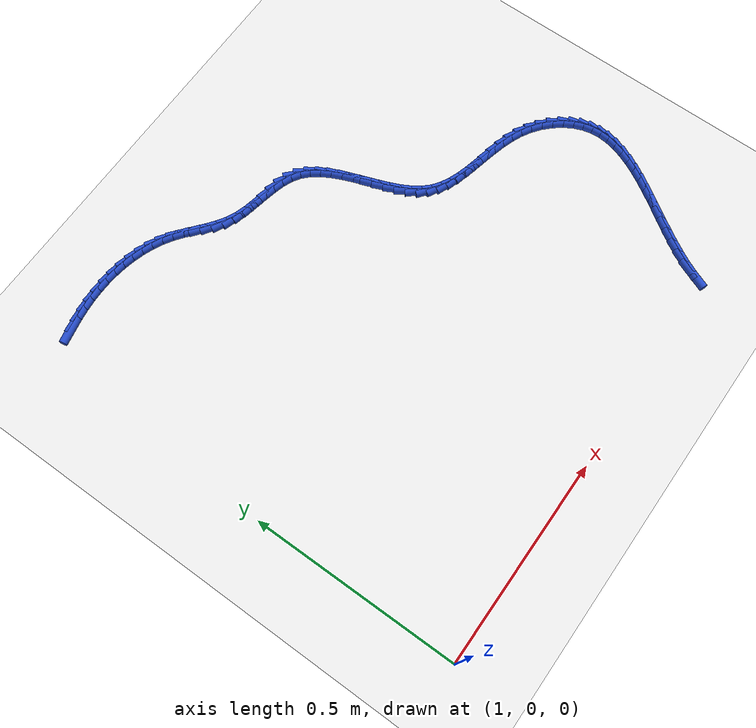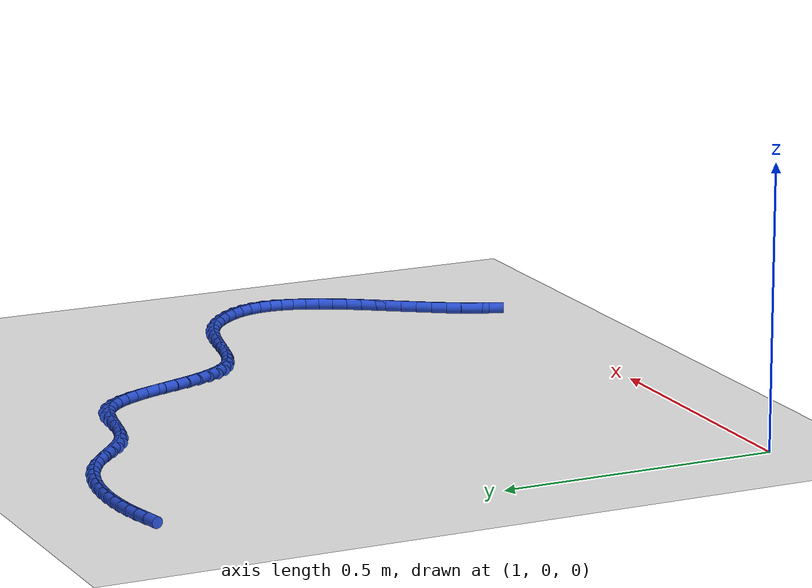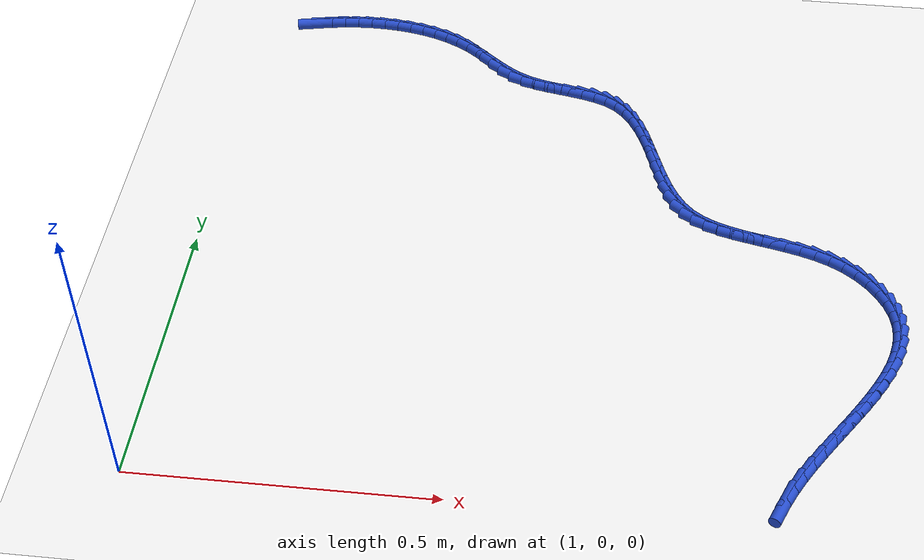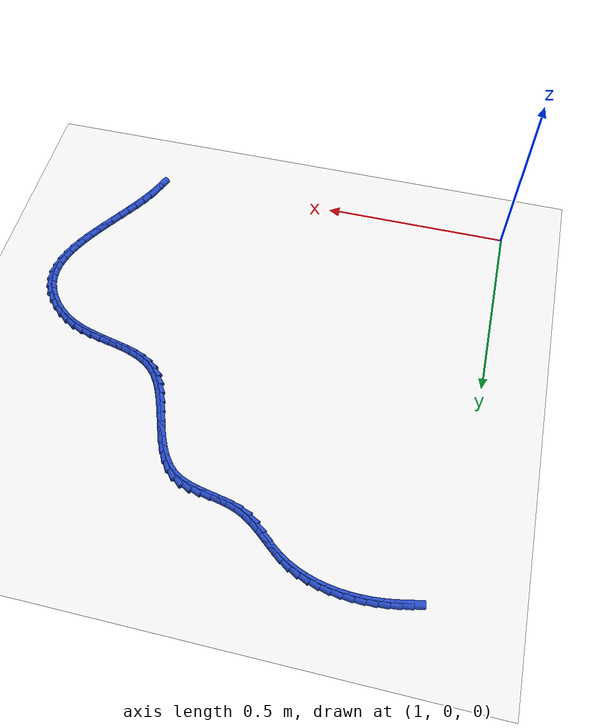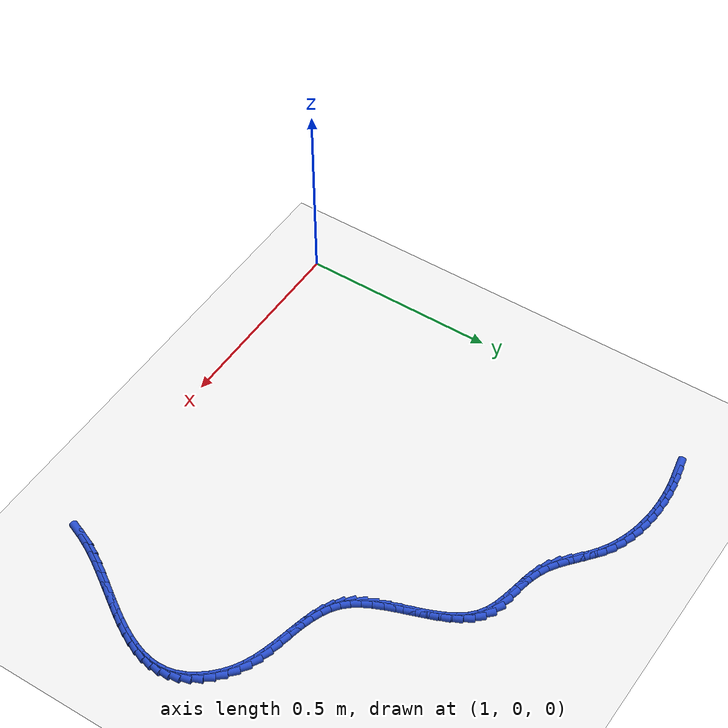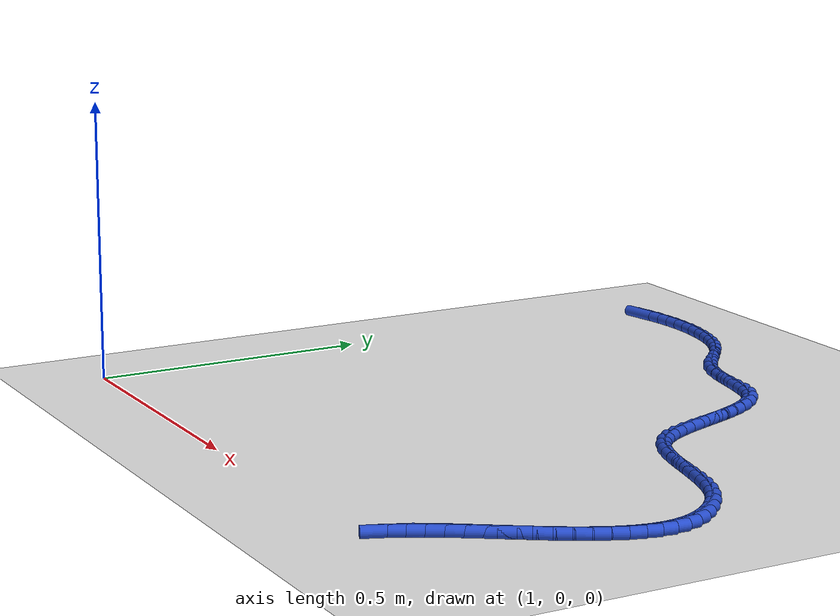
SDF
<sdf version="1.6">
 <world name="default">
  <model name="ground_plane">
   <static>1</static>
   <link name="link">
    <collision name="collision">
     <geometry><plane><normal>0 0 1</normal><size>100 100</size></plane></geometry>
     <surface><friction><ode><mu>100</mu><mu2>50</mu2></ode></friction></surface>
    </collision>
    <visual name="visual">
     <cast_shadows>0</cast_shadows>
     <geometry><plane><normal>0 0 1</normal><size>100 100</size></plane></geometry>
     <material>
      <script><uri>file://media/materials/scripts/gazebo.material</uri><name>Gazebo/WhiteGlow</name></script>
     </material>
    </visual>
   </link>
  </model>
  <model name="line">
   <link name="link_71">
    <pose>1.0995099693033457 1.0949292208144241 0.01 0 1.57 0.19654742426345875</pose>
    <collision name="collision">
     <geometry><cylinder><radius>0.01</radius><length>0.08</length></cylinder></geometry>
    </collision>
    <visual name="visual">
     <material>
      <script><name>Gazebo/Blue</name><uri>file://media/materials/scripts/gazebo.material</uri></script>
     </material>
     <geometry><cylinder><radius>0.01</radius><length>0.08</length></cylinder></geometry>
    </visual>
   </link>
   <link name="link_72">
    <pose>1.1248017144392806 1.0999652647575537 0.01 0 1.57 0.14840533250866253</pose>
    <collision name="collision">
     <geometry><cylinder><radius>0.01</radius><length>0.08</length></cylinder></geometry>
    </collision>
    <visual name="visual">
     <material>
      <script><name>Gazebo/Blue</name><uri>file://media/materials/scripts/gazebo.material</uri></script>
     </material>
     <geometry><cylinder><radius>0.01</radius><length>0.08</length></cylinder></geometry>
    </visual>
   </link>
   <link name="link_73">
    <pose>1.1505126242585688 1.103809161912704 0.01 0 1.57 0.09424960472446355</pose>
    <collision name="collision">
     <geometry><cylinder><radius>0.01</radius><length>0.08</length></cylinder></geometry>
    </collision>
    <visual name="visual">
     <material>
      <script><name>Gazebo/Blue</name><uri>file://media/materials/scripts/gazebo.material</uri></script>
     </material>
     <geometry><cylinder><radius>0.01</radius><length>0.08</length></cylinder></geometry>
    </visual>
   </link>
   <link name="link_74">
    <pose>1.17664352514968 1.106279307418807 0.01 0 1.57 0.038077685356058516</pose>
    <collision name="collision">
     <geometry><cylinder><radius>0.01</radius><length>0.08</length></cylinder></geometry>
    </collision>
    <visual name="visual">
     <material>
      <script><name>Gazebo/Blue</name><uri>file://media/materials/scripts/gazebo.material</uri></script>
     </material>
     <geometry><cylinder><radius>0.01</radius><length>0.08</length></cylinder></geometry>
    </visual>
   </link>
   <link name="link_75">
    <pose>1.203034714039521 1.1072847087663655 0.01 0 1.57 -0.020252873606114746</pose>
    <collision name="collision">
     <geometry><cylinder><radius>0.01</radius><length>0.08</length></cylinder></geometry>
    </collision>
    <visual name="visual">
     <material>
      <script><name>Gazebo/Blue</name><uri>file://media/materials/scripts/gazebo.material</uri></script>
     </material>
     <geometry><cylinder><radius>0.01</radius><length>0.08</length></cylinder></geometry>
    </visual>
   </link>
   <link name="link_76">
    <pose>1.2295012631021565 1.1067486117928518 0.01 0 1.57 -0.08155603382480009</pose>
    <collision name="collision">
     <geometry><cylinder><radius>0.01</radius><length>0.08</length></cylinder></geometry>
    </collision>
    <visual name="visual">
     <material>
      <script><name>Gazebo/Blue</name><uri>file://media/materials/scripts/gazebo.material</uri></script>
     </material>
     <geometry><cylinder><radius>0.01</radius><length>0.08</length></cylinder></geometry>
    </visual>
   </link>
   <link name="link_77">
    <pose>1.2558582445116502 1.1045942623357383 0.01 0 1.57 -0.1466370596937748</pose>
    <collision name="collision">
     <geometry><cylinder><radius>0.01</radius><length>0.08</length></cylinder></geometry>
    </collision>
    <visual name="visual">
     <material>
      <script><name>Gazebo/Blue</name><uri>file://media/materials/scripts/gazebo.material</uri></script>
     </material>
     <geometry><cylinder><radius>0.01</radius><length>0.08</length></cylinder></geometry>
    </visual>
   </link>
   <link name="link_78">
    <pose>1.281920730442067 1.1007449062324979 0.01 0 1.57 -0.21628345399351867</pose>
    <collision name="collision">
     <geometry><cylinder><radius>0.01</radius><length>0.08</length></cylinder></geometry>
    </collision>
    <visual name="visual">
     <material>
      <script><name>Gazebo/Blue</name><uri>file://media/materials/scripts/gazebo.material</uri></script>
     </material>
     <geometry><cylinder><radius>0.01</radius><length>0.08</length></cylinder></geometry>
    </visual>
   </link>
   <link name="link_79">
    <pose>1.3075037930674704 1.0951237893206034 0.01 0 1.57 -0.29123655688492545</pose>
    <collision name="collision">
     <geometry><cylinder><radius>0.01</radius><length>0.08</length></cylinder></geometry>
    </collision>
    <visual name="visual">
     <material>
      <script><name>Gazebo/Blue</name><uri>file://media/materials/scripts/gazebo.material</uri></script>
     </material>
     <geometry><cylinder><radius>0.01</radius><length>0.08</length></cylinder></geometry>
    </visual>
   </link>
   <link name="link_80">
    <pose>1.3324225045619245 1.0876541574375265 0.01 0 1.57 -0.3721381277812001</pose>
    <collision name="collision">
     <geometry><cylinder><radius>0.01</radius><length>0.08</length></cylinder></geometry>
    </collision>
    <visual name="visual">
     <material>
      <script><name>Gazebo/Blue</name><uri>file://media/materials/scripts/gazebo.material</uri></script>
     </material>
     <geometry><cylinder><radius>0.01</radius><length>0.08</length></cylinder></geometry>
    </visual>
   </link>
   <link name="link_81">
    <pose>1.356491937099494 1.0782592564207403 0.01 0 1.57 -0.45944738746989666</pose>
    <collision name="collision">
     <geometry><cylinder><radius>0.01</radius><length>0.08</length></cylinder></geometry>
    </collision>
    <visual name="visual">
     <material>
      <script><name>Gazebo/Blue</name><uri>file://media/materials/scripts/gazebo.material</uri></script>
     </material>
     <geometry><cylinder><radius>0.01</radius><length>0.08</length></cylinder></geometry>
    </visual>
   </link>
   <link name="link_82">
    <pose>1.3795271628542434 1.0668623321077173 0.01 0 1.57 -0.5533222559878519</pose>
    <collision name="collision">
     <geometry><cylinder><radius>0.01</radius><length>0.08</length></cylinder></geometry>
    </collision>
    <visual name="visual">
     <material>
      <script><name>Gazebo/Blue</name><uri>file://media/materials/scripts/gazebo.material</uri></script>
     </material>
     <geometry><cylinder><radius>0.01</radius><length>0.08</length></cylinder></geometry>
    </visual>
   </link>
   <link name="link_83">
    <pose>1.4013433644520894 1.0533867775443297 0.01 0 1.57 -0.6422244705023927</pose>
    <collision name="collision">
     <geometry><cylinder><radius>0.01</radius><length>0.08</length></cylinder></geometry>
    </collision>
    <visual name="visual">
     <material>
      <script><name>Gazebo/Blue</name><uri>file://media/materials/scripts/gazebo.material</uri></script>
     </material>
     <geometry><cylinder><radius>0.01</radius><length>0.08</length></cylinder></geometry>
    </visual>
   </link>
   <link name="link_84">
    <pose>1.4219297931130037 1.037987981513518 0.01 0 1.57 -0.6918975041664919</pose>
    <collision name="collision">
     <geometry><cylinder><radius>0.01</radius><length>0.08</length></cylinder></geometry>
    </collision>
    <visual name="visual">
     <material>
      <script><name>Gazebo/Blue</name><uri>file://media/materials/scripts/gazebo.material</uri></script>
     </material>
     <geometry><cylinder><radius>0.01</radius><length>0.08</length></cylinder></geometry>
    </visual>
   </link>
   <link name="link_85">
    <pose>1.4418022138906106 1.0215230617090554 0.01 0 1.57 -0.6966446735592975</pose>
    <collision name="collision">
     <geometry><cylinder><radius>0.01</radius><length>0.08</length></cylinder></geometry>
    </collision>
    <visual name="visual">
     <material>
      <script><name>Gazebo/Blue</name><uri>file://media/materials/scripts/gazebo.material</uri></script>
     </material>
     <geometry><cylinder><radius>0.01</radius><length>0.08</length></cylinder></geometry>
    </visual>
   </link>
   <link name="link_86">
    <pose>1.461575556558113 1.004981300919371 0.01 0 1.57 -0.6563841195219137</pose>
    <collision name="collision">
     <geometry><cylinder><radius>0.01</radius><length>0.08</length></cylinder></geometry>
    </collision>
    <visual name="visual">
     <material>
      <script><name>Gazebo/Blue</name><uri>file://media/materials/scripts/gazebo.material</uri></script>
     </material>
     <geometry><cylinder><radius>0.01</radius><length>0.08</length></cylinder></geometry>
    </visual>
   </link>
   <link name="link_87">
    <pose>1.4818647508887144 0.9893519819328948 0.01 0 1.57 -0.5699359193053338</pose>
    <collision name="collision">
     <geometry><cylinder><radius>0.01</radius><length>0.08</length></cylinder></geometry>
    </collision>
    <visual name="visual">
     <material>
      <script><name>Gazebo/Blue</name><uri>file://media/materials/scripts/gazebo.material</uri></script>
     </material>
     <geometry><cylinder><radius>0.01</radius><length>0.08</length></cylinder></geometry>
    </visual>
   </link>
   <link name="link_88">
    <pose>1.5032847266556173 0.9756243875380564 0.01 0 1.57 -0.43886230095871676</pose>
    <collision name="collision">
     <geometry><cylinder><radius>0.01</radius><length>0.08</length></cylinder></geometry>
    </collision>
    <visual name="visual">
     <material>
      <script><name>Gazebo/Blue</name><uri>file://media/materials/scripts/gazebo.material</uri></script>
     </material>
     <geometry><cylinder><radius>0.01</radius><length>0.08</length></cylinder></geometry>
    </visual>
   </link>
   <link name="link_89">
    <pose>1.5264317113988803 0.964759391535034 0.01 0 1.57 -0.3091356025774658</pose>
    <collision name="collision">
     <geometry><cylinder><radius>0.01</radius><length>0.08</length></cylinder></geometry>
    </collision>
    <visual name="visual">
     <material>
      <script><name>Gazebo/Blue</name><uri>file://media/materials/scripts/gazebo.material</uri></script>
     </material>
     <geometry><cylinder><radius>0.01</radius><length>0.08</length></cylinder></geometry>
    </visual>
   </link>
   <link name="link_90">
    <pose>1.551307380065799 0.956814732922264 0.01 0 1.57 -0.2289063560500351</pose>
    <collision name="collision">
     <geometry><cylinder><radius>0.01</radius><length>0.08</length></cylinder></geometry>
    </collision>
    <visual name="visual">
     <material>
      <script><name>Gazebo/Blue</name><uri>file://media/materials/scripts/gazebo.material</uri></script>
     </material>
     <geometry><cylinder><radius>0.01</radius><length>0.08</length></cylinder></geometry>
    </visual>
   </link>
   <link name="link_91">
    <pose>1.5772100094942783 0.9507796778333768 0.01 0 1.57 -0.19594532564467074</pose>
    <collision name="collision">
     <geometry><cylinder><radius>0.01</radius><length>0.08</length></cylinder></geometry>
    </collision>
    <visual name="visual">
     <material>
      <script><name>Gazebo/Blue</name><uri>file://media/materials/scripts/gazebo.material</uri></script>
     </material>
     <geometry><cylinder><radius>0.01</radius><length>0.08</length></cylinder></geometry>
    </visual>
   </link>
   <link name="link_92">
    <pose>1.6033972121387512 0.9455817225596845 0.01 0 1.57 -0.20811564662053977</pose>
    <collision name="collision">
     <geometry><cylinder><radius>0.01</radius><length>0.08</length></cylinder></geometry>
    </collision>
    <visual name="visual">
     <material>
      <script><name>Gazebo/Blue</name><uri>file://media/materials/scripts/gazebo.material</uri></script>
     </material>
     <geometry><cylinder><radius>0.01</radius><length>0.08</length></cylinder></geometry>
    </visual>
   </link>
   <link name="link_93">
    <pose>1.6291266004536509 0.9401483633924997 0.01 0 1.57 -0.2682047624006664</pose>
    <collision name="collision">
     <geometry><cylinder><radius>0.01</radius><length>0.08</length></cylinder></geometry>
    </collision>
    <visual name="visual">
     <material>
      <script><name>Gazebo/Blue</name><uri>file://media/materials/scripts/gazebo.material</uri></script>
     </material>
     <geometry><cylinder><radius>0.01</radius><length>0.08</length></cylinder></geometry>
    </visual>
   </link>
   <link name="link_94">
    <pose>1.6536557868934116 0.9334070966231349 0.01 0 1.57 -0.38382400864713856</pose>
    <collision name="collision">
     <geometry><cylinder><radius>0.01</radius><length>0.08</length></cylinder></geometry>
    </collision>
    <visual name="visual">
     <material>
      <script><name>Gazebo/Blue</name><uri>file://media/materials/scripts/gazebo.material</uri></script>
     </material>
     <geometry><cylinder><radius>0.01</radius><length>0.08</length></cylinder></geometry>
    </visual>
   </link>
   <link name="link_95">
    <pose>1.6762423839124663 0.9242854185429018 0.01 0 1.57 -0.5626176626146184</pose>
    <collision name="collision">
     <geometry><cylinder><radius>0.01</radius><length>0.08</length></cylinder></geometry>
    </collision>
    <visual name="visual">
     <material>
      <script><name>Gazebo/Blue</name><uri>file://media/materials/scripts/gazebo.material</uri></script>
     </material>
     <geometry><cylinder><radius>0.01</radius><length>0.08</length></cylinder></geometry>
    </visual>
   </link>
   <link name="link_96">
    <pose>1.6961561607879325 0.9117277487504792 0.01 0 1.57 -0.7657255255749237</pose>
    <collision name="collision">
     <geometry><cylinder><radius>0.01</radius><length>0.08</length></cylinder></geometry>
    </collision>
    <visual name="visual">
     <material>
      <script><name>Gazebo/Blue</name><uri>file://media/materials/scripts/gazebo.material</uri></script>
     </material>
     <geometry><cylinder><radius>0.01</radius><length>0.08</length></cylinder></geometry>
    </visual>
   </link>
   <link name="link_97">
    <pose>1.713166434873072 0.8953739192772314 0.01 0 1.57 -0.9321260165804418</pose>
    <collision name="collision">
     <geometry><cylinder><radius>0.01</radius><length>0.08</length></cylinder></geometry>
    </collision>
    <visual name="visual">
     <material>
      <script><name>Gazebo/Blue</name><uri>file://media/materials/scripts/gazebo.material</uri></script>
     </material>
     <geometry><cylinder><radius>0.01</radius><length>0.08</length></cylinder></geometry>
    </visual>
   </link>
   <link name="link_98">
    <pose>1.7277074913812374 0.8757894526722686 0.01 0 1.57 -1.0559136024923677</pose>
    <collision name="collision">
     <geometry><cylinder><radius>0.01</radius><length>0.08</length></cylinder></geometry>
    </collision>
    <visual name="visual">
     <material>
      <script><name>Gazebo/Blue</name><uri>file://media/materials/scripts/gazebo.material</uri></script>
     </material>
     <geometry><cylinder><radius>0.01</radius><length>0.08</length></cylinder></geometry>
    </visual>
   </link>
   <link name="link_99">
    <pose>1.7402597071503243 0.8536040348561161 0.01 0 1.57 -1.1419944429110098</pose>
    <collision name="collision">
     <geometry><cylinder><radius>0.01</radius><length>0.08</length></cylinder></geometry>
    </collision>
    <visual name="visual">
     <material>
      <script><name>Gazebo/Blue</name><uri>file://media/materials/scripts/gazebo.material</uri></script>
     </material>
     <geometry><cylinder><radius>0.01</radius><length>0.08</length></cylinder></geometry>
    </visual>
   </link>
   <link name="link_100">
    <pose>1.7513034590182297 0.8294473517492998 0.01 0 1.57 -1.1965140049305312</pose>
    <collision name="collision">
     <geometry><cylinder><radius>0.01</radius><length>0.08</length></cylinder></geometry>
    </collision>
    <visual name="visual">
     <material>
      <script><name>Gazebo/Blue</name><uri>file://media/materials/scripts/gazebo.material</uri></script>
     </material>
     <geometry><cylinder><radius>0.01</radius><length>0.08</length></cylinder></geometry>
    </visual>
   </link>
   <link name="link_101">
    <pose>1.7613191238228474 0.8039490892723461 0.01 0 1.57 -1.2241502688944048</pose>
    <collision name="collision">
     <geometry><cylinder><radius>0.01</radius><length>0.08</length></cylinder></geometry>
    </collision>
    <visual name="visual">
     <material>
      <script><name>Gazebo/Blue</name><uri>file://media/materials/scripts/gazebo.material</uri></script>
     </material>
     <geometry><cylinder><radius>0.01</radius><length>0.08</length></cylinder></geometry>
    </visual>
   </link>
   <link name="link_102">
    <pose>1.7707870784020738 0.77773893334578 0.01 0 1.57 -1.2274185421283461</pose>
    <collision name="collision">
     <geometry><cylinder><radius>0.01</radius><length>0.08</length></cylinder></geometry>
    </collision>
    <visual name="visual">
     <material>
      <script><name>Gazebo/Blue</name><uri>file://media/materials/scripts/gazebo.material</uri></script>
     </material>
     <geometry><cylinder><radius>0.01</radius><length>0.08</length></cylinder></geometry>
    </visual>
   </link>
   <link name="link_103">
    <pose>1.7801876995938046 0.7514465698901277 0.01 0 1.57 -1.2066108345893714</pose>
    <collision name="collision">
     <geometry><cylinder><radius>0.01</radius><length>0.08</length></cylinder></geometry>
    </collision>
    <visual name="visual">
     <material>
      <script><name>Gazebo/Blue</name><uri>file://media/materials/scripts/gazebo.material</uri></script>
     </material>
     <geometry><cylinder><radius>0.01</radius><length>0.08</length></cylinder></geometry>
    </visual>
   </link>
   <link name="link_104">
    <pose>1.7900013642359363 0.7257016848259148 0.01 0 1.57 -1.1597975073725004</pose>
    <collision name="collision">
     <geometry><cylinder><radius>0.01</radius><length>0.08</length></cylinder></geometry>
    </collision>
    <visual name="visual">
     <material>
      <script><name>Gazebo/Blue</name><uri>file://media/materials/scripts/gazebo.material</uri></script>
     </material>
     <geometry><cylinder><radius>0.01</radius><length>0.08</length></cylinder></geometry>
    </visual>
   </link>
   <link name="link_105">
    <pose>1.8007084491663625 0.7011339640736673 0.01 0 1.57 -1.0828335490556837</pose>
    <collision name="collision">
     <geometry><cylinder><radius>0.01</radius><length>0.08</length></cylinder></geometry>
    </collision>
    <visual name="visual">
     <material>
      <script><name>Gazebo/Blue</name><uri>file://media/materials/scripts/gazebo.material</uri></script>
     </material>
     <geometry><cylinder><radius>0.01</radius><length>0.08</length></cylinder></geometry>
    </visual>
   </link>
   <link name="link_106">
    <pose>1.8127893312229806 0.678373093553911 0.01 0 1.57 -0.9697771376599267</pose>
    <collision name="collision">
     <geometry><cylinder><radius>0.01</radius><length>0.08</length></cylinder></geometry>
    </collision>
    <visual name="visual">
     <material>
      <script><name>Gazebo/Blue</name><uri>file://media/materials/scripts/gazebo.material</uri></script>
     </material>
     <geometry><cylinder><radius>0.01</radius><length>0.08</length></cylinder></geometry>
    </visual>
   </link>
   <link name="link_107">
    <pose>1.8267243872436856 0.6580487591871713 0.01 0 1.57 -0.8149482966514473</pose>
    <collision name="collision">
     <geometry><cylinder><radius>0.01</radius><length>0.08</length></cylinder></geometry>
    </collision>
    <visual name="visual">
     <material>
      <script><name>Gazebo/Blue</name><uri>file://media/materials/scripts/gazebo.material</uri></script>
     </material>
     <geometry><cylinder><radius>0.01</radius><length>0.08</length></cylinder></geometry>
    </visual>
   </link>
   <link name="link_108">
    <pose>1.8429929403964256 0.640789156066973 0.01 0 1.57 -0.6361846033794647</pose>
    <collision name="collision">
     <geometry><cylinder><radius>0.01</radius><length>0.08</length></cylinder></geometry>
    </collision>
    <visual name="visual">
     <material>
      <script><name>Gazebo/Blue</name><uri>file://media/materials/scripts/gazebo.material</uri></script>
     </material>
     <geometry><cylinder><radius>0.01</radius><length>0.08</length></cylinder></geometry>
    </visual>
   </link>
   <link name="link_109">
    <pose>1.8618294120607155 0.6268759702119604 0.01 0 1.57 -0.4836684615697884</pose>
    <collision name="collision">
     <geometry><cylinder><radius>0.01</radius><length>0.08</length></cylinder></geometry>
    </collision>
    <visual name="visual">
     <material>
      <script><name>Gazebo/Blue</name><uri>file://media/materials/scripts/gazebo.material</uri></script>
     </material>
     <geometry><cylinder><radius>0.01</radius><length>0.08</length></cylinder></geometry>
    </visual>
   </link>
   <link name="link_110">
    <pose>1.8829108467909934 0.6158022607824247 0.01 0 1.57 -0.3684089717560502</pose>
    <collision name="collision">
     <geometry><cylinder><radius>0.01</radius><length>0.08</length></cylinder></geometry>
    </collision>
    <visual name="visual">
     <material>
      <script><name>Gazebo/Blue</name><uri>file://media/materials/scripts/gazebo.material</uri></script>
     </material>
     <geometry><cylinder><radius>0.01</radius><length>0.08</length></cylinder></geometry>
    </visual>
   </link>
   <link name="link_111">
    <pose>1.905837142655045 0.6069519331513716 0.01 0 1.57 -0.2888846126701612</pose>
    <collision name="collision">
     <geometry><cylinder><radius>0.01</radius><length>0.08</length></cylinder></geometry>
    </collision>
    <visual name="visual">
     <material>
      <script><name>Gazebo/Blue</name><uri>file://media/materials/scripts/gazebo.material</uri></script>
     </material>
     <geometry><cylinder><radius>0.01</radius><length>0.08</length></cylinder></geometry>
    </visual>
   </link>
   <link name="link_112">
    <pose>1.9302081977206567 0.5997088926918075 0.01 0 1.57 -0.24119494564917582</pose>
    <collision name="collision">
     <geometry><cylinder><radius>0.01</radius><length>0.08</length></cylinder></geometry>
    </collision>
    <visual name="visual">
     <material>
      <script><name>Gazebo/Blue</name><uri>file://media/materials/scripts/gazebo.material</uri></script>
     </material>
     <geometry><cylinder><radius>0.01</radius><length>0.08</length></cylinder></geometry>
    </visual>
   </link>
   <link name="link_113">
    <pose>1.9556239100556152 0.5934570447767382 0.01 0 1.57 -0.22179612783247568</pose>
    <collision name="collision">
     <geometry><cylinder><radius>0.01</radius><length>0.08</length></cylinder></geometry>
    </collision>
    <visual name="visual">
     <material>
      <script><name>Gazebo/Blue</name><uri>file://media/materials/scripts/gazebo.material</uri></script>
     </material>
     <geometry><cylinder><radius>0.01</radius><length>0.08</length></cylinder></geometry>
    </visual>
   </link>
   <link name="link_114">
    <pose>1.9816841777277039 0.5875802947791701 0.01 0 1.57 -0.22850997309535395</pose>
    <collision name="collision">
     <geometry><cylinder><radius>0.01</radius><length>0.08</length></cylinder></geometry>
    </collision>
    <visual name="visual">
     <material>
      <script><name>Gazebo/Blue</name><uri>file://media/materials/scripts/gazebo.material</uri></script>
     </material>
     <geometry><cylinder><radius>0.01</radius><length>0.08</length></cylinder></geometry>
    </visual>
   </link>
   <link name="link_115">
    <pose>2.0079888988047108 0.5814625480721094 0.01 0 1.57 -0.2606649440859552</pose>
    <collision name="collision">
     <geometry><cylinder><radius>0.01</radius><length>0.08</length></cylinder></geometry>
    </collision>
    <visual name="visual">
     <material>
      <script><name>Gazebo/Blue</name><uri>file://media/materials/scripts/gazebo.material</uri></script>
     </material>
     <geometry><cylinder><radius>0.01</radius><length>0.08</length></cylinder></geometry>
    </visual>
   </link>
   <link name="link_116">
    <pose>2.0341379713544208 0.5744877100285622 0.01 0 1.57 -0.318826053212033</pose>
    <collision name="collision">
     <geometry><cylinder><radius>0.01</radius><length>0.08</length></cylinder></geometry>
    </collision>
    <visual name="visual">
     <material>
      <script><name>Gazebo/Blue</name><uri>file://media/materials/scripts/gazebo.material</uri></script>
     </material>
     <geometry><cylinder><radius>0.01</radius><length>0.08</length></cylinder></geometry>
    </visual>
   </link>
   <link name="link_117">
    <pose>2.0597312934446204 0.5660396860215346 0.01 0 1.57 -0.40415050255614055</pose>
    <collision name="collision">
     <geometry><cylinder><radius>0.01</radius><length>0.08</length></cylinder></geometry>
    </collision>
    <visual name="visual">
     <material>
      <script><name>Gazebo/Blue</name><uri>file://media/materials/scripts/gazebo.material</uri></script>
     </material>
     <geometry><cylinder><radius>0.01</radius><length>0.08</length></cylinder></geometry>
    </visual>
   </link>
   <link name="link_118">
    <pose>2.084368763143095 0.5555023814240331 0.01 0 1.57 -0.5170837987024319</pose>
    <collision name="collision">
     <geometry><cylinder><radius>0.01</radius><length>0.08</length></cylinder></geometry>
    </collision>
    <visual name="visual">
     <material>
      <script><name>Gazebo/Blue</name><uri>file://media/materials/scripts/gazebo.material</uri></script>
     </material>
     <geometry><cylinder><radius>0.01</radius><length>0.08</length></cylinder></geometry>
    </visual>
   </link>
   <link name="link_119">
    <pose>2.1076500183870803 0.542262423224577 0.01 0 1.57 -0.6454136617655961</pose>
    <collision name="collision">
     <geometry><cylinder><radius>0.01</radius><length>0.08</length></cylinder></geometry>
    </collision>
    <visual name="visual">
     <material>
      <script><name>Gazebo/Blue</name><uri>file://media/materials/scripts/gazebo.material</uri></script>
     </material>
     <geometry><cylinder><radius>0.01</radius><length>0.08</length></cylinder></geometry>
    </visual>
   </link>
   <link name="link_120">
    <pose>2.1291388497992108 0.5260814908910075 0.01 0 1.57 -0.769992955414057</pose>
    <collision name="collision">
     <geometry><cylinder><radius>0.01</radius><length>0.08</length></cylinder></geometry>
    </collision>
    <visual name="visual">
     <material>
      <script><name>Gazebo/Blue</name><uri>file://media/materials/scripts/gazebo.material</uri></script>
     </material>
     <geometry><cylinder><radius>0.01</radius><length>0.08</length></cylinder></geometry>
    </visual>
   </link>
   <link name="link_121">
    <pose>2.148326942522658 0.5074756673700014 0.01 0 1.57 -0.8951298032857178</pose>
    <collision name="collision">
     <geometry><cylinder><radius>0.01</radius><length>0.08</length></cylinder></geometry>
    </collision>
    <visual name="visual">
     <material>
      <script><name>Gazebo/Blue</name><uri>file://media/materials/scripts/gazebo.material</uri></script>
     </material>
     <geometry><cylinder><radius>0.01</radius><length>0.08</length></cylinder></geometry>
    </visual>
   </link>
   <link name="link_122">
    <pose>2.164697339607435 0.4870514534959546 0.01 0 1.57 -1.0285408829522338</pose>
    <collision name="collision">
     <geometry><cylinder><radius>0.01</radius><length>0.08</length></cylinder></geometry>
    </collision>
    <visual name="visual">
     <material>
      <script><name>Gazebo/Blue</name><uri>file://media/materials/scripts/gazebo.material</uri></script>
     </material>
     <geometry><cylinder><radius>0.01</radius><length>0.08</length></cylinder></geometry>
    </visual>
   </link>
   <link name="link_123">
    <pose>2.1777330841035525 0.46541535010326307 0.01 0 1.57 -1.1790752065566508</pose>
    <collision name="collision">
     <geometry><cylinder><radius>0.01</radius><length>0.08</length></cylinder></geometry>
    </collision>
    <visual name="visual">
     <material>
      <script><name>Gazebo/Blue</name><uri>file://media/materials/scripts/gazebo.material</uri></script>
     </material>
     <geometry><cylinder><radius>0.01</radius><length>0.08</length></cylinder></geometry>
    </visual>
   </link>
   <link name="link_124">
    <pose>2.1869215709691687 0.44317087510952013 0.01 0 1.57 -1.3458653230555422</pose>
    <collision name="collision">
     <geometry><cylinder><radius>0.01</radius><length>0.08</length></cylinder></geometry>
    </collision>
    <visual name="visual">
     <material>
      <script><name>Gazebo/Blue</name><uri>file://media/materials/scripts/gazebo.material</uri></script>
     </material>
     <geometry><cylinder><radius>0.01</radius><length>0.08</length></cylinder></geometry>
    </visual>
   </link>
   <link name="link_125">
    <pose>2.192061025610208 0.4207084947469979 0.01 0 1.57 -1.5089781134866314</pose>
    <collision name="collision">
     <geometry><cylinder><radius>0.01</radius><length>0.08</length></cylinder></geometry>
    </collision>
    <visual name="visual">
     <material>
      <script><name>Gazebo/Blue</name><uri>file://media/materials/scripts/gazebo.material</uri></script>
     </material>
     <geometry><cylinder><radius>0.01</radius><length>0.08</length></cylinder></geometry>
    </visual>
   </link>
   <link name="link_126">
    <pose>2.193462455617834 0.3980672003215083 0.01 0 1.57 1.4843272326921444</pose>
    <collision name="collision">
     <geometry><cylinder><radius>0.01</radius><length>0.08</length></cylinder></geometry>
    </collision>
    <visual name="visual">
     <material>
      <script><name>Gazebo/Blue</name><uri>file://media/materials/scripts/gazebo.material</uri></script>
     </material>
     <geometry><cylinder><radius>0.01</radius><length>0.08</length></cylinder></geometry>
    </visual>
   </link>
   <link name="link_127">
    <pose>2.1914848115637904 0.37525312170947295 0.01 0 1.57 1.3566543691813011</pose>
    <collision name="collision">
     <geometry><cylinder><radius>0.01</radius><length>0.08</length></cylinder></geometry>
    </collision>
    <visual name="visual">
     <material>
      <script><name>Gazebo/Blue</name><uri>file://media/materials/scripts/gazebo.material</uri></script>
     </material>
     <geometry><cylinder><radius>0.01</radius><length>0.08</length></cylinder></geometry>
    </visual>
   </link>
   <link name="link_128">
    <pose>2.1864870440198225 0.352272388787313 0.01 0 1.57 1.2511790097298918</pose>
    <collision name="collision">
     <geometry><cylinder><radius>0.01</radius><length>0.08</length></cylinder></geometry>
    </collision>
    <visual name="visual">
     <material>
      <script><name>Gazebo/Blue</name><uri>file://media/materials/scripts/gazebo.material</uri></script>
     </material>
     <geometry><cylinder><radius>0.01</radius><length>0.08</length></cylinder></geometry>
    </visual>
   </link>
   <link name="link_129">
    <pose>2.1788281035576764 0.3291311314314493 0.01 0 1.57 1.166727621782708</pose>
    <collision name="collision">
     <geometry><cylinder><radius>0.01</radius><length>0.08</length></cylinder></geometry>
    </collision>
    <visual name="visual">
     <material>
      <script><name>Gazebo/Blue</name><uri>file://media/materials/scripts/gazebo.material</uri></script>
     </material>
     <geometry><cylinder><radius>0.01</radius><length>0.08</length></cylinder></geometry>
    </visual>
   </link>
   <link name="link_130">
    <pose>2.168866940749094 0.3058354795183029 0.01 0 1.57 1.1009413048312915</pose>
    <collision name="collision">
     <geometry><cylinder><radius>0.01</radius><length>0.08</length></cylinder></geometry>
    </collision>
    <visual name="visual">
     <material>
      <script><name>Gazebo/Blue</name><uri>file://media/materials/scripts/gazebo.material</uri></script>
     </material>
     <geometry><cylinder><radius>0.01</radius><length>0.08</length></cylinder></geometry>
    </visual>
   </link>
   <link name="link_131">
    <pose>2.156962506165822 0.2823915629242948 0.01 0 1.57 1.0512983188778031</pose>
    <collision name="collision">
     <geometry><cylinder><radius>0.01</radius><length>0.08</length></cylinder></geometry>
    </collision>
    <visual name="visual">
     <material>
      <script><name>Gazebo/Blue</name><uri>file://media/materials/scripts/gazebo.material</uri></script>
     </material>
     <geometry><cylinder><radius>0.01</radius><length>0.08</length></cylinder></geometry>
    </visual>
   </link>
   <link name="link_132">
    <pose>2.143473750379605 0.25880551152584647 0.01 0 1.57 1.015604175911715</pose>
    <collision name="collision">
     <geometry><cylinder><radius>0.01</radius><length>0.08</length></cylinder></geometry>
    </collision>
    <visual name="visual">
     <material>
      <script><name>Gazebo/Blue</name><uri>file://media/materials/scripts/gazebo.material</uri></script>
     </material>
     <geometry><cylinder><radius>0.01</radius><length>0.08</length></cylinder></geometry>
    </visual>
   </link>
   <link name="link_133">
    <pose>2.128759623962186 0.23508345519937884 0.01 0 1.57 0.9921611720464109</pose>
    <collision name="collision">
     <geometry><cylinder><radius>0.01</radius><length>0.08</length></cylinder></geometry>
    </collision>
    <visual name="visual">
     <material>
      <script><name>Gazebo/Blue</name><uri>file://media/materials/scripts/gazebo.material</uri></script>
     </material>
     <geometry><cylinder><radius>0.01</radius><length>0.08</length></cylinder></geometry>
    </visual>
   </link>
   <link name="link_134">
    <pose>2.1131790774853103 0.21123152382131297 0.01 0 1.57 0.9797900282348552</pose>
    <collision name="collision">
     <geometry><cylinder><radius>0.01</radius><length>0.08</length></cylinder></geometry>
    </collision>
    <visual name="visual">
     <material>
      <script><name>Gazebo/Blue</name><uri>file://media/materials/scripts/gazebo.material</uri></script>
     </material>
     <geometry><cylinder><radius>0.01</radius><length>0.08</length></cylinder></geometry>
    </visual>
   </link>
   <link name="link_135">
    <pose>2.097091061520723 0.18725584726806951 0.01 0 1.57 0.9778008651466836</pose>
    <collision name="collision">
     <geometry><cylinder><radius>0.01</radius><length>0.08</length></cylinder></geometry>
    </collision>
    <visual name="visual">
     <material>
      <script><name>Gazebo/Blue</name><uri>file://media/materials/scripts/gazebo.material</uri></script>
     </material>
     <geometry><cylinder><radius>0.01</radius><length>0.08</length></cylinder></geometry>
    </visual>
   </link>
   <link name="link_136">
    <pose>2.0808545266401683 0.1631625554160704 0.01 0 1.57 0.9859584765096764</pose>
    <collision name="collision">
     <geometry><cylinder><radius>0.01</radius><length>0.08</length></cylinder></geometry>
    </collision>
    <visual name="visual">
     <material>
      <script><name>Gazebo/Blue</name><uri>file://media/materials/scripts/gazebo.material</uri></script>
     </material>
     <geometry><cylinder><radius>0.01</radius><length>0.08</length></cylinder></geometry>
    </visual>
   </link>
   <link name="link_137">
    <pose>2.064828423415391 0.13895777814173627 0.01 0 1.57 1.0044584709186557</pose>
    <collision name="collision">
     <geometry><cylinder><radius>0.01</radius><length>0.08</length></cylinder></geometry>
    </collision>
    <visual name="visual">
     <material>
      <script><name>Gazebo/Blue</name><uri>file://media/materials/scripts/gazebo.material</uri></script>
     </material>
     <geometry><cylinder><radius>0.01</radius><length>0.08</length></cylinder></geometry>
    </visual>
   </link>
   <link name="link_138">
    <pose>2.0493717024181355 0.11464764532148831 0.01 0 1.57 1.0339155882647952</pose>
    <collision name="collision">
     <geometry><cylinder><radius>0.01</radius><length>0.08</length></cylinder></geometry>
    </collision>
    <visual name="visual">
     <material>
      <script><name>Gazebo/Blue</name><uri>file://media/materials/scripts/gazebo.material</uri></script>
     </material>
     <geometry><cylinder><radius>0.01</radius><length>0.08</length></cylinder></geometry>
    </visual>
   </link>
   <link name="link_139">
    <pose>2.034843314220146 0.09023828683174749 0.01 0 1.57 1.0753540043211514</pose>
    <collision name="collision">
     <geometry><cylinder><radius>0.01</radius><length>0.08</length></cylinder></geometry>
    </collision>
    <visual name="visual">
     <material>
      <script><name>Gazebo/Blue</name><uri>file://media/materials/scripts/gazebo.material</uri></script>
     </material>
     <geometry><cylinder><radius>0.01</radius><length>0.08</length></cylinder></geometry>
    </visual>
   </link>
   <link name="link_140">
    <pose>2.021602206314538 0.06573583244665364 0.01 0 1.57 1.1276385418650952</pose>
    <collision name="collision">
     <geometry><cylinder><radius>0.01</radius><length>0.08</length></cylinder></geometry>
    </collision>
    <visual name="visual">
     <material>
      <script><name>Gazebo/Blue</name><uri>file://media/materials/scripts/gazebo.material</uri></script>
     </material>
     <geometry><cylinder><radius>0.01</radius><length>0.08</length></cylinder></geometry>
    </visual>
   </link>
   <link name="link_141">
    <pose>2.009929763749043 0.04114383509115212 0.01 0 1.57 1.1824025972975938</pose>
    <collision name="collision">
     <geometry><cylinder><radius>0.01</radius><length>0.08</length></cylinder></geometry>
    </collision>
    <visual name="visual">
     <material>
      <script><name>Gazebo/Blue</name><uri>file://media/materials/scripts/gazebo.material</uri></script>
     </material>
     <geometry><cylinder><radius>0.01</radius><length>0.08</length></cylinder></geometry>
    </visual>
   </link>
  </model>
 </world>
</sdf>
